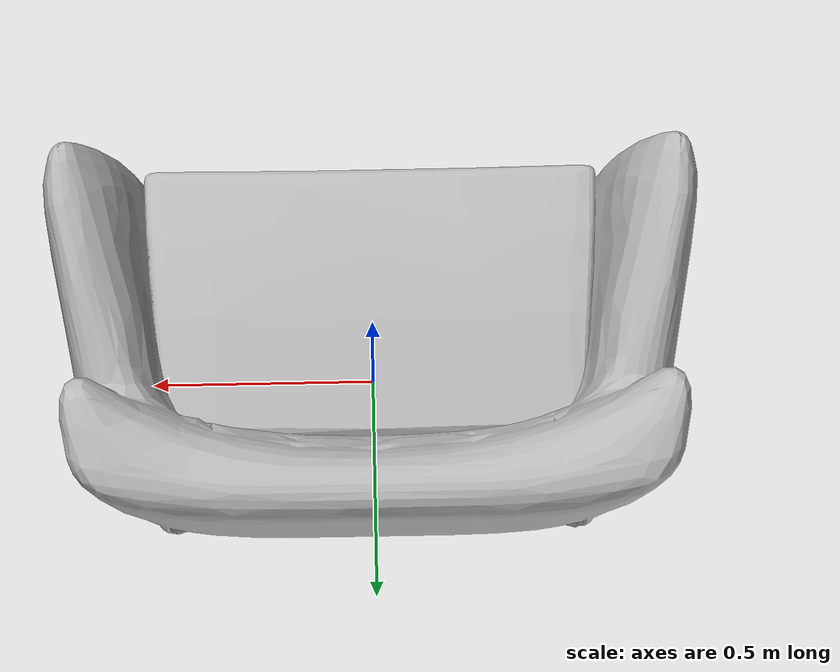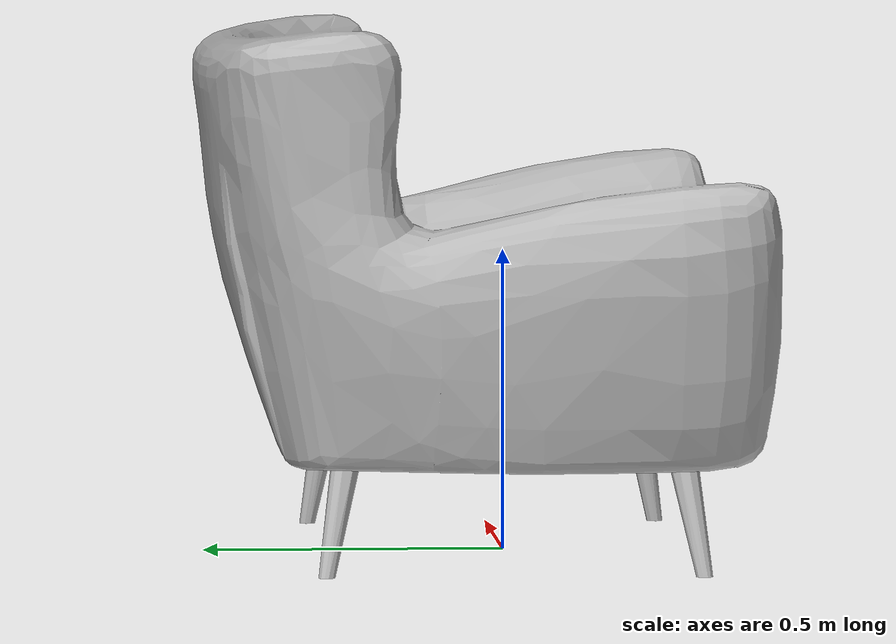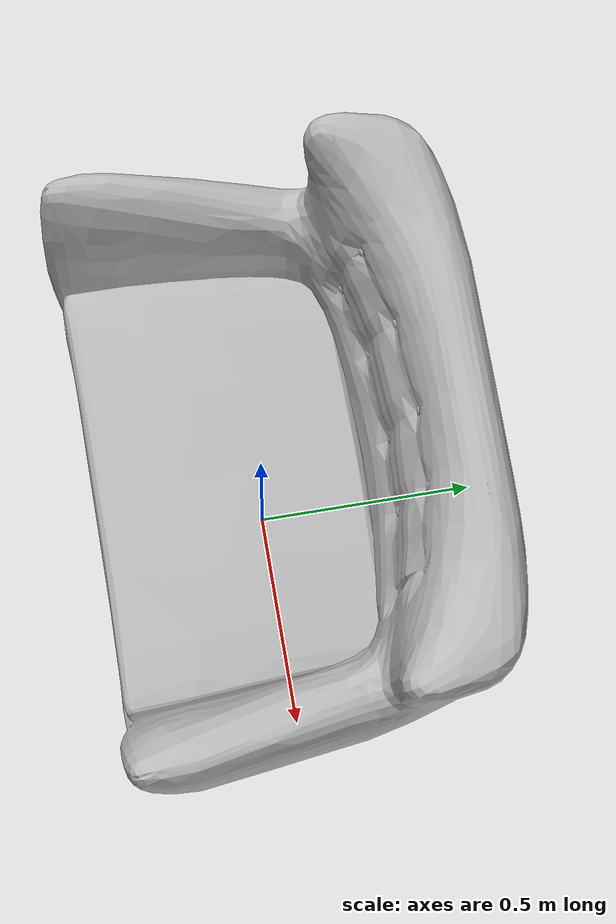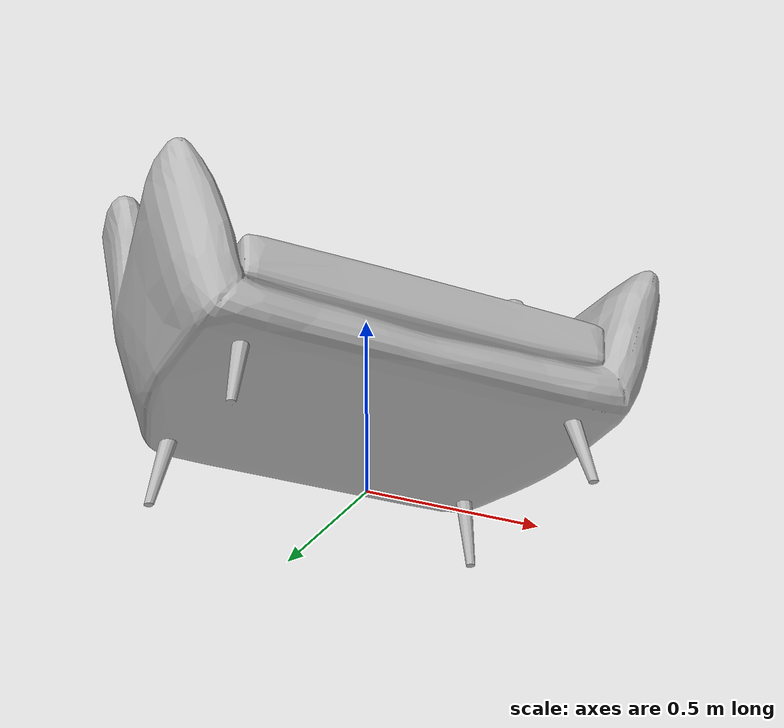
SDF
<sdf version="1.6">
	<model name="LivingRoomChairs_Obc1361750757_lod0">
		<link name="main_link">
			<visual name="visual_RootNode">
				<geometry>
					<mesh>
						<uri>model://LivingRoomChairs_Obc1361750757_lod0/meshes/visual_RootNode.dae</uri>
					</mesh>
				</geometry>
			</visual>
			<collision name="collision_RootNode_lod0_0">
				<geometry>
					<mesh>
						<uri>model://LivingRoomChairs_Obc1361750757_lod0/meshes/collision_RootNode_lod0_0.dae</uri>
					</mesh>
				</geometry>
			</collision>
		</link>
	</model>
</sdf>
